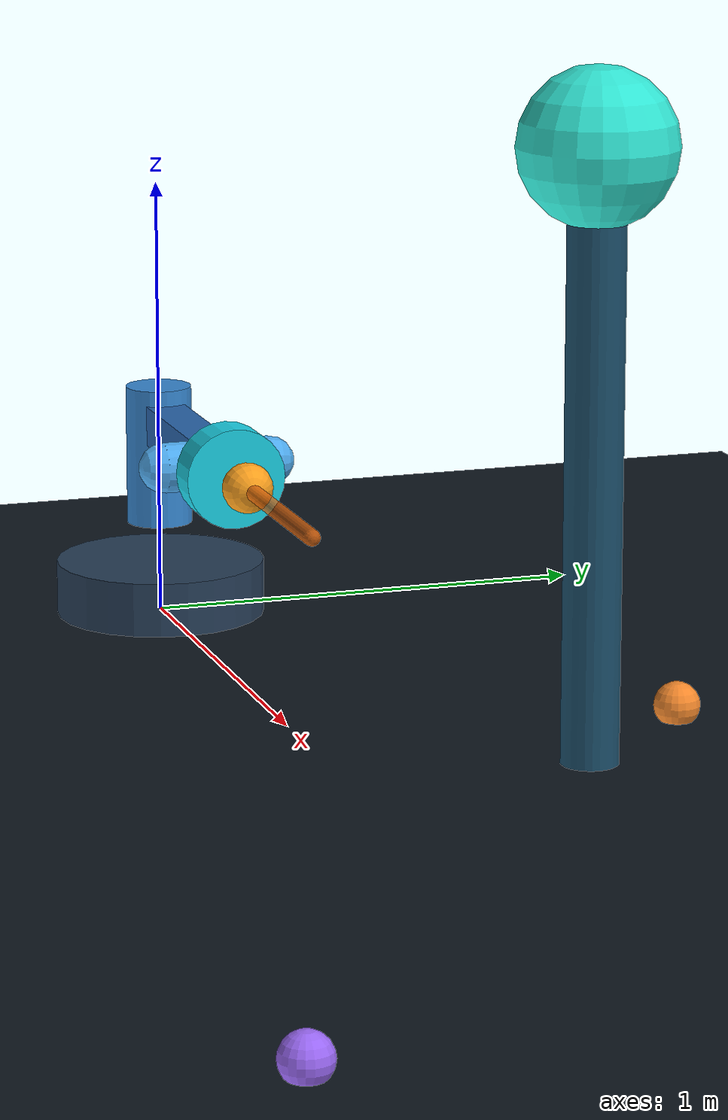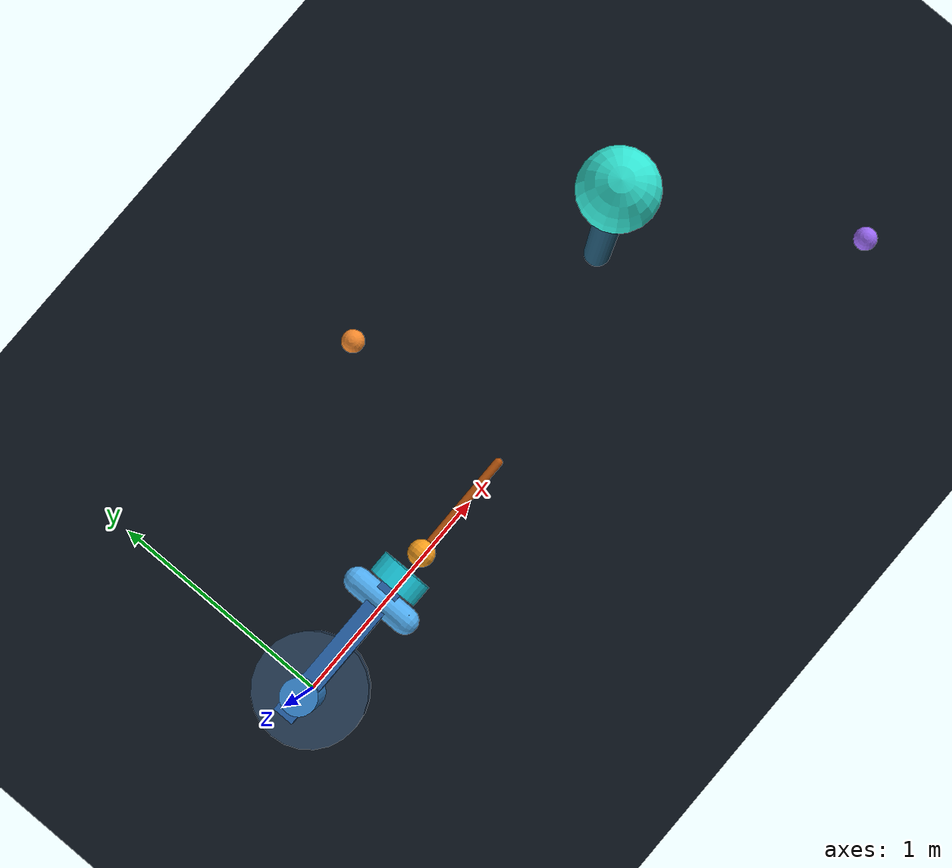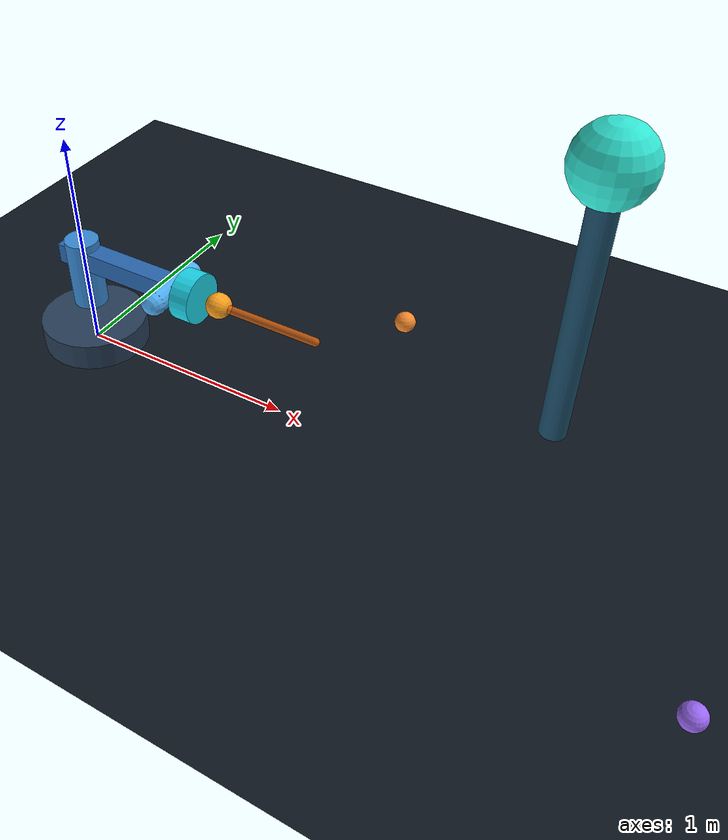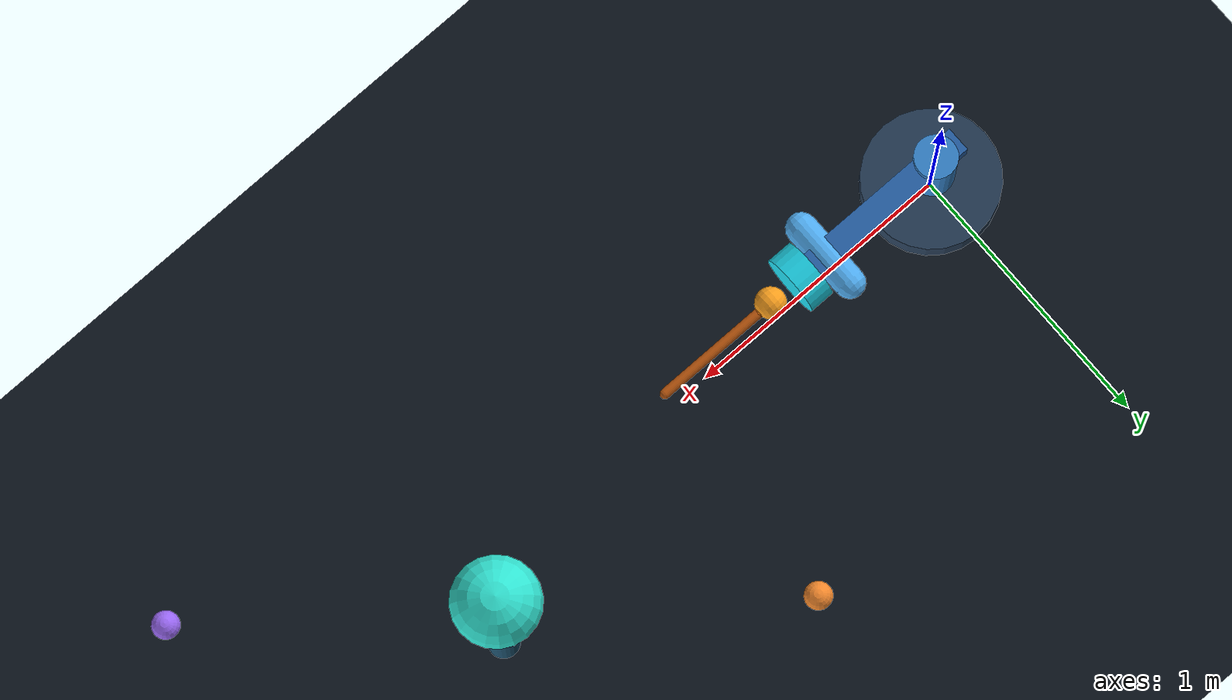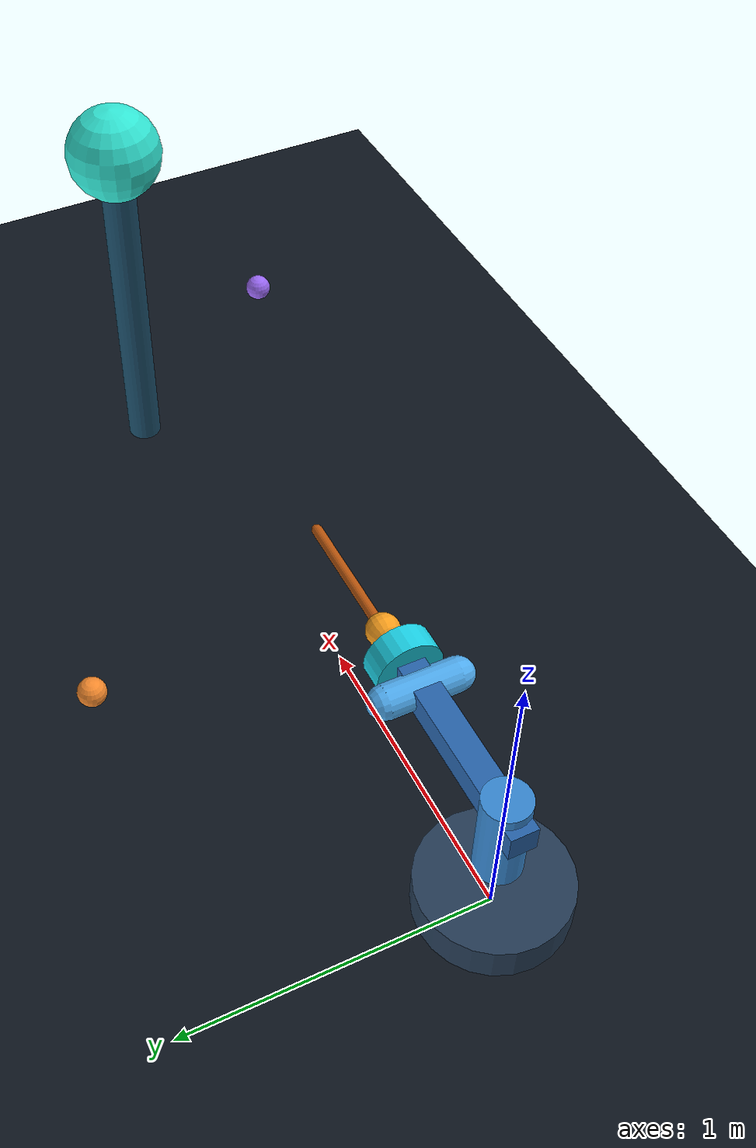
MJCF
<mujoco model="sensor scan rig">
  <option timestep="0.002" gravity="0 0 0">
    <flag contact="disable" energy="disable"/>
  </option>
  <visual>
    <headlight ambient=".4 .4 .4" diffuse=".7 .7 .7" specular=".2 .2 .2"/>
    <global offwidth="1200" offheight="720"/>
    <rgba haze="0.04 0.08 0.13 1"/>
    <quality shadowsize="2048"/>
  </visual>
  <worldbody>
    <light pos="0 -3 5" dir="0 0 -1" diffuse=".9 .95 1"/>
    <light pos="3 2 3" dir="-1 -1 -1" diffuse=".45 .72 1"/>
    <geom name="floor" type="plane" size="4 4 .1" rgba=".055 .085 .12 1"/>

    <body name="target" pos="2.1 .25 .8">
      <geom type="cylinder" size=".055 .58" rgba=".11 .31 .42 1"/>
      <geom type="sphere" size=".15" pos="0 0 .57" rgba=".2 .92 .85 1"/>
      <site name="target_frame" pos="0 0 .57" size=".045" rgba=".2 1 .9 1"/>
    </body>

    <body name="pedestal" pos="0 0 .05">
      <geom type="cylinder" size=".24 .07" rgba=".15 .24 .34 1"/>
      <body name="pan" pos="0 0 .18">
        <joint name="pan_joint" type="hinge" axis="0 0 1" damping=".025"/>
        <geom type="cylinder" size=".075 .16" pos="0 0 .14" rgba=".22 .54 .83 1"/>
        <geom type="box" size=".34 .045 .045" pos=".24 0 .22" rgba=".16 .4 .68 1"/>
        <body name="tilt" pos=".48 0 .22">
          <joint name="tilt_joint" type="hinge" axis="0 1 0" damping=".018"/>
          <geom type="capsule" fromto="0 -.12 0 0 .12 0" size=".055" rgba=".32 .69 .96 1"/>
          <geom type="cylinder" size=".11 .045" euler="0 90 0" pos=".11 0 0" rgba=".11 .83 .91 1"/>
          <site name="scanner_frame" pos=".24 0 0" quat=".7071068 0 .7071068 0" size=".055" rgba="1 .64 .12 1"/>
          <geom type="capsule" fromto=".24 0 0 .7 0 0" size=".018" rgba="1 .47 .08 .75"/>
        </body>
      </body>
    </body>

    <body name="marker_a" pos="1.2 .8 .03"><geom type="sphere" size=".05" rgba=".98 .55 .18 1"/></body>
    <body name="marker_b" pos="2.9 -.55 .03"><geom type="sphere" size=".05" rgba=".62 .42 .98 1"/></body>
  </worldbody>
  <actuator>
    <motor name="pan_drive" joint="pan_joint" gear=".35" ctrllimited="true" ctrlrange="-1 1"/>
    <motor name="tilt_drive" joint="tilt_joint" gear=".22" ctrllimited="true" ctrlrange="-1 1"/>
  </actuator>
  <sensor>
    <jointpos name="pan_angle" joint="pan_joint"/>
    <jointpos name="tilt_angle" joint="tilt_joint"/>
    <framepos name="tip_position" objtype="site" objname="scanner_frame" reftype="site" refname="target_frame"/>
    <framequat name="tip_orientation" objtype="site" objname="scanner_frame" reftype="site" refname="target_frame"/>
    <framezaxis name="tip_forward" objtype="site" objname="scanner_frame"/>
    <gyro name="tip_gyro" site="scanner_frame"/>
    <velocimeter name="tip_velocity" site="scanner_frame"/>
    <framelinvel name="tip_relative_velocity" objtype="site" objname="scanner_frame" reftype="site" refname="target_frame"/>
    <clock name="elapsed"/>
  </sensor>
</mujoco>
